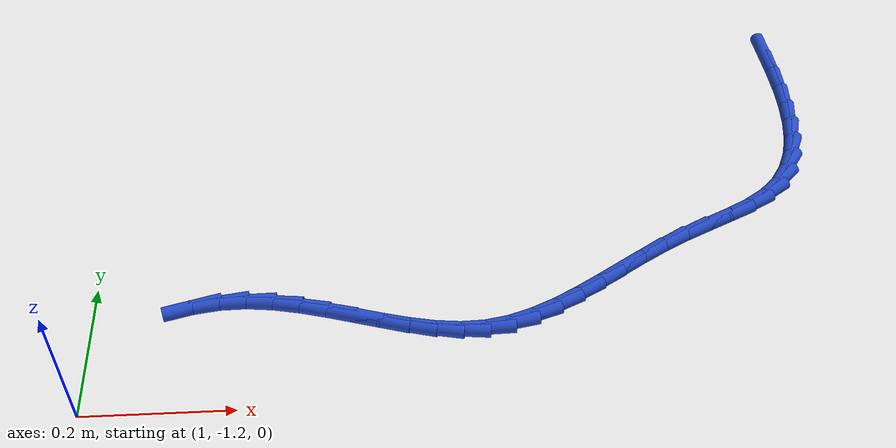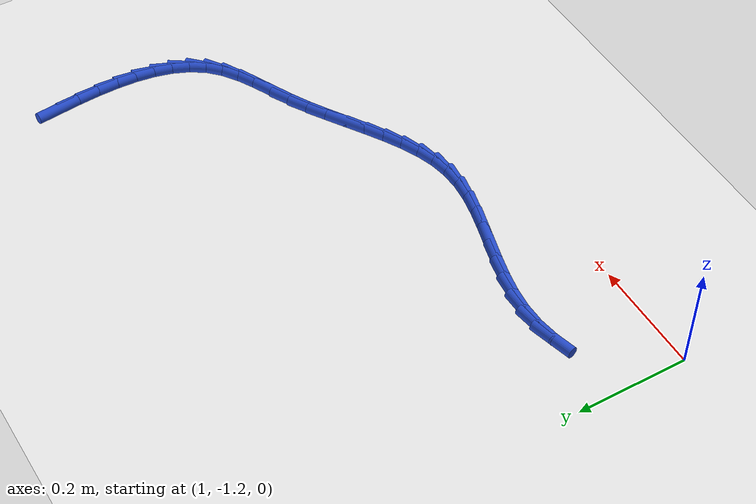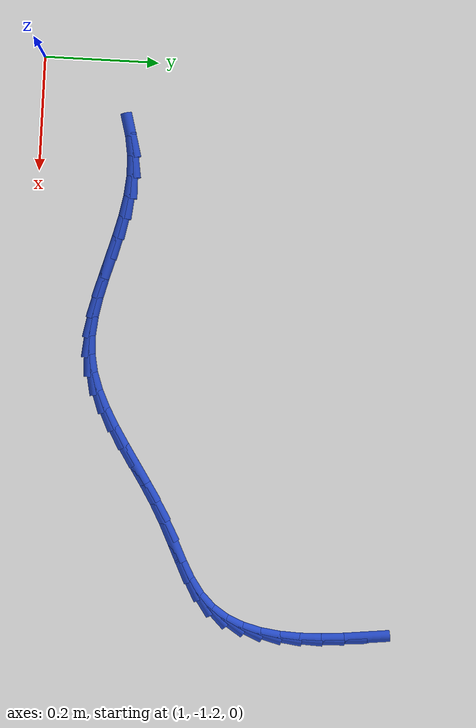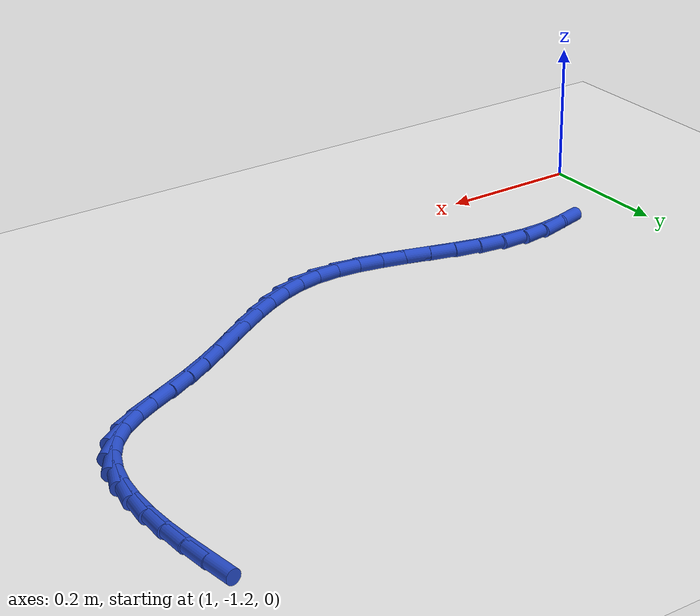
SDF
<sdf version="1.6">
 <world name="default">
  <model name="ground_plane">
   <static>1</static>
   <link name="link">
    <collision name="collision">
     <geometry><plane><normal>0 0 1</normal><size>100 100</size></plane></geometry>
     <surface><friction><ode><mu>100</mu><mu2>50</mu2></ode></friction></surface>
    </collision>
    <visual name="visual">
     <cast_shadows>0</cast_shadows>
     <geometry><plane><normal>0 0 1</normal><size>100 100</size></plane></geometry>
     <material>
      <script><uri>file://media/materials/scripts/gazebo.material</uri><name>Gazebo/WhiteGlow</name></script>
     </material>
    </visual>
   </link>
  </model>
  <model name="line">
   <link name="link_116">
    <pose>1.9872264827737676 -0.5815031991100881 0.01 0 1.57 -1.4576846992929102</pose>
    <collision name="collision">
     <geometry><cylinder><radius>0.01</radius><length>0.08</length></cylinder></geometry>
    </collision>
    <visual name="visual">
     <material>
      <script><name>Gazebo/Blue</name><uri>file://media/materials/scripts/gazebo.material</uri></script>
     </material>
     <geometry><cylinder><radius>0.01</radius><length>0.08</length></cylinder></geometry>
    </visual>
   </link>
   <link name="link_117">
    <pose>1.9917659618540535 -0.6214646329467459 0.01 0 1.57 -1.4933557357807985</pose>
    <collision name="collision">
     <geometry><cylinder><radius>0.01</radius><length>0.08</length></cylinder></geometry>
    </collision>
    <visual name="visual">
     <material>
      <script><name>Gazebo/Blue</name><uri>file://media/materials/scripts/gazebo.material</uri></script>
     </material>
     <geometry><cylinder><radius>0.01</radius><length>0.08</length></cylinder></geometry>
    </visual>
   </link>
   <link name="link_118">
    <pose>1.9948069110935562 -0.6606542603078669 0.01 0 1.57 -1.544249902977541</pose>
    <collision name="collision">
     <geometry><cylinder><radius>0.01</radius><length>0.08</length></cylinder></geometry>
    </collision>
    <visual name="visual">
     <material>
      <script><name>Gazebo/Blue</name><uri>file://media/materials/scripts/gazebo.material</uri></script>
     </material>
     <geometry><cylinder><radius>0.01</radius><length>0.08</length></cylinder></geometry>
    </visual>
   </link>
   <link name="link_119">
    <pose>1.995816124653071 -0.6986622604365692 0.01 0 1.57 1.528101934071037</pose>
    <collision name="collision">
     <geometry><cylinder><radius>0.01</radius><length>0.08</length></cylinder></geometry>
    </collision>
    <visual name="visual">
     <material>
      <script><name>Gazebo/Blue</name><uri>file://media/materials/scripts/gazebo.material</uri></script>
     </material>
     <geometry><cylinder><radius>0.01</radius><length>0.08</length></cylinder></geometry>
    </visual>
   </link>
   <link name="link_120">
    <pose>1.9942603966933923 -0.7350788125759706 0.01 0 1.57 1.4363846745554085</pose>
    <collision name="collision">
     <geometry><cylinder><radius>0.01</radius><length>0.08</length></cylinder></geometry>
    </collision>
    <visual name="visual">
     <material>
      <script><name>Gazebo/Blue</name><uri>file://media/materials/scripts/gazebo.material</uri></script>
     </material>
     <geometry><cylinder><radius>0.01</radius><length>0.08</length></cylinder></geometry>
    </visual>
   </link>
   <link name="link_121">
    <pose>1.9896065213753156 -0.7694940959691898 0.01 0 1.57 1.3174781397698048</pose>
    <collision name="collision">
     <geometry><cylinder><radius>0.01</radius><length>0.08</length></cylinder></geometry>
    </collision>
    <visual name="visual">
     <material>
      <script><name>Gazebo/Blue</name><uri>file://media/materials/scripts/gazebo.material</uri></script>
     </material>
     <geometry><cylinder><radius>0.01</radius><length>0.08</length></cylinder></geometry>
    </visual>
   </link>
   <link name="link_122">
    <pose>1.9813212928596349 -0.8014982898593442 0.01 0 1.57 1.1675654839113954</pose>
    <collision name="collision">
     <geometry><cylinder><radius>0.01</radius><length>0.08</length></cylinder></geometry>
    </collision>
    <visual name="visual">
     <material>
      <script><name>Gazebo/Blue</name><uri>file://media/materials/scripts/gazebo.material</uri></script>
     </material>
     <geometry><cylinder><radius>0.01</radius><length>0.08</length></cylinder></geometry>
    </visual>
   </link>
   <link name="link_123">
    <pose>1.968871505307145 -0.8306815734895523 0.01 0 1.57 0.986917075265329</pose>
    <collision name="collision">
     <geometry><cylinder><radius>0.01</radius><length>0.08</length></cylinder></geometry>
    </collision>
    <visual name="visual">
     <material>
      <script><name>Gazebo/Blue</name><uri>file://media/materials/scripts/gazebo.material</uri></script>
     </material>
     <geometry><cylinder><radius>0.01</radius><length>0.08</length></cylinder></geometry>
    </visual>
   </link>
   <link name="link_124">
    <pose>1.9517239528786408 -0.8566341261029318 0.01 0 1.57 0.7843195128619176</pose>
    <collision name="collision">
     <geometry><cylinder><radius>0.01</radius><length>0.08</length></cylinder></geometry>
    </collision>
    <visual name="visual">
     <material>
      <script><name>Gazebo/Blue</name><uri>file://media/materials/scripts/gazebo.material</uri></script>
     </material>
     <geometry><cylinder><radius>0.01</radius><length>0.08</length></cylinder></geometry>
    </visual>
   </link>
   <link name="link_125">
    <pose>1.9293551950529026 -0.8789546797602112 0.01 0 1.57 0.6038750743746063</pose>
    <collision name="collision">
     <geometry><cylinder><radius>0.01</radius><length>0.08</length></cylinder></geometry>
    </collision>
    <visual name="visual">
     <material>
      <script><name>Gazebo/Blue</name><uri>file://media/materials/scripts/gazebo.material</uri></script>
     </material>
     <geometry><cylinder><radius>0.01</radius><length>0.08</length></cylinder></geometry>
    </visual>
   </link>
   <link name="link_126">
    <pose>1.9019485044334483 -0.8978609313594734 0.01 0 1.57 0.4938047646412717</pose>
    <collision name="collision">
     <geometry><cylinder><radius>0.01</radius><length>0.08</length></cylinder></geometry>
    </collision>
    <visual name="visual">
     <material>
      <script><name>Gazebo/Blue</name><uri>file://media/materials/scripts/gazebo.material</uri></script>
     </material>
     <geometry><cylinder><radius>0.01</radius><length>0.08</length></cylinder></geometry>
    </visual>
   </link>
   <link name="link_127">
    <pose>1.870858315980791 -0.9145963240209097 0.01 0 1.57 0.4454703849372298</pose>
    <collision name="collision">
     <geometry><cylinder><radius>0.01</radius><length>0.08</length></cylinder></geometry>
    </collision>
    <visual name="visual">
     <material>
      <script><name>Gazebo/Blue</name><uri>file://media/materials/scripts/gazebo.material</uri></script>
     </material>
     <geometry><cylinder><radius>0.01</radius><length>0.08</length></cylinder></geometry>
    </visual>
   </link>
   <link name="link_128">
    <pose>1.8375492157436122 -0.9305007751595642 0.01 0 1.57 0.44902163722185184</pose>
    <collision name="collision">
     <geometry><cylinder><radius>0.01</radius><length>0.08</length></cylinder></geometry>
    </collision>
    <visual name="visual">
     <material>
      <script><name>Gazebo/Blue</name><uri>file://media/materials/scripts/gazebo.material</uri></script>
     </material>
     <geometry><cylinder><radius>0.01</radius><length>0.08</length></cylinder></geometry>
    </visual>
   </link>
   <link name="link_129">
    <pose>1.8034857897705923 -0.9469142021904796 0.01 0 1.57 0.4965349517449008</pose>
    <collision name="collision">
     <geometry><cylinder><radius>0.01</radius><length>0.08</length></cylinder></geometry>
    </collision>
    <visual name="visual">
     <material>
      <script><name>Gazebo/Blue</name><uri>file://media/materials/scripts/gazebo.material</uri></script>
     </material>
     <geometry><cylinder><radius>0.01</radius><length>0.08</length></cylinder></geometry>
    </visual>
   </link>
   <link name="link_130">
    <pose>1.7700293961150806 -0.9650412708286974 0.01 0 1.57 0.545349699010382</pose>
    <collision name="collision">
     <geometry><cylinder><radius>0.01</radius><length>0.08</length></cylinder></geometry>
    </collision>
    <visual name="visual">
     <material>
      <script><name>Gazebo/Blue</name><uri>file://media/materials/scripts/gazebo.material</uri></script>
     </material>
     <geometry><cylinder><radius>0.01</radius><length>0.08</length></cylinder></geometry>
    </visual>
   </link>
   <link name="link_131">
    <pose>1.7375289415196589 -0.9847601097339607 0.01 0 1.57 0.5716383829701792</pose>
    <collision name="collision">
     <geometry><cylinder><radius>0.01</radius><length>0.08</length></cylinder></geometry>
    </collision>
    <visual name="visual">
     <material>
      <script><name>Gazebo/Blue</name><uri>file://media/materials/scripts/gazebo.material</uri></script>
     </material>
     <geometry><cylinder><radius>0.01</radius><length>0.08</length></cylinder></geometry>
    </visual>
   </link>
   <link name="link_132">
    <pose>1.7057594161527967 -1.0051968888356377 0.01 0 1.57 0.5751757112579161</pose>
    <collision name="collision">
     <geometry><cylinder><radius>0.01</radius><length>0.08</length></cylinder></geometry>
    </collision>
    <visual name="visual">
     <material>
      <script><name>Gazebo/Blue</name><uri>file://media/materials/scripts/gazebo.material</uri></script>
     </material>
     <geometry><cylinder><radius>0.01</radius><length>0.08</length></cylinder></geometry>
    </visual>
   </link>
   <link name="link_133">
    <pose>1.6744892496272463 -1.025469182271706 0.01 0 1.57 0.5550867644209161</pose>
    <collision name="collision">
     <geometry><cylinder><radius>0.01</radius><length>0.08</length></cylinder></geometry>
    </collision>
    <visual name="visual">
     <material>
      <script><name>Gazebo/Blue</name><uri>file://media/materials/scripts/gazebo.material</uri></script>
     </material>
     <geometry><cylinder><radius>0.01</radius><length>0.08</length></cylinder></geometry>
    </visual>
   </link>
   <link name="link_134">
    <pose>1.6434868715557605 -1.0446945641801417 0.01 0 1.57 0.5093812392047438</pose>
    <collision name="collision">
     <geometry><cylinder><radius>0.01</radius><length>0.08</length></cylinder></geometry>
    </collision>
    <visual name="visual">
     <material>
      <script><name>Gazebo/Blue</name><uri>file://media/materials/scripts/gazebo.material</uri></script>
     </material>
     <geometry><cylinder><radius>0.01</radius><length>0.08</length></cylinder></geometry>
    </visual>
   </link>
   <link name="link_135">
    <pose>1.6125207115510904 -1.0619906086989221 0.01 0 1.57 0.43510404566772826</pose>
    <collision name="collision">
     <geometry><cylinder><radius>0.01</radius><length>0.08</length></cylinder></geometry>
    </collision>
    <visual name="visual">
     <material>
      <script><name>Gazebo/Blue</name><uri>file://media/materials/scripts/gazebo.material</uri></script>
     </material>
     <geometry><cylinder><radius>0.01</radius><length>0.08</length></cylinder></geometry>
    </visual>
   </link>
   <link name="link_136">
    <pose>1.581359199225989 -1.0764748899660233 0.01 0 1.57 0.32915734884097275</pose>
    <collision name="collision">
     <geometry><cylinder><radius>0.01</radius><length>0.08</length></cylinder></geometry>
    </collision>
    <visual name="visual">
     <material>
      <script><name>Gazebo/Blue</name><uri>file://media/materials/scripts/gazebo.material</uri></script>
     </material>
     <geometry><cylinder><radius>0.01</radius><length>0.08</length></cylinder></geometry>
    </visual>
   </link>
   <link name="link_137">
    <pose>1.5497707641932086 -1.0872649821194222 0.01 0 1.57 0.19035145123141214</pose>
    <collision name="collision">
     <geometry><cylinder><radius>0.01</radius><length>0.08</length></cylinder></geometry>
    </collision>
    <visual name="visual">
     <material>
      <script><name>Gazebo/Blue</name><uri>file://media/materials/scripts/gazebo.material</uri></script>
     </material>
     <geometry><cylinder><radius>0.01</radius><length>0.08</length></cylinder></geometry>
    </visual>
   </link>
   <link name="link_138">
    <pose>1.5175238360655017 -1.0934784592970959 0.01 0 1.57 0.03172909073590086</pose>
    <collision name="collision">
     <geometry><cylinder><radius>0.01</radius><length>0.08</length></cylinder></geometry>
    </collision>
    <visual name="visual">
     <material>
      <script><name>Gazebo/Blue</name><uri>file://media/materials/scripts/gazebo.material</uri></script>
     </material>
     <geometry><cylinder><radius>0.01</radius><length>0.08</length></cylinder></geometry>
    </visual>
   </link>
   <link name="link_139">
    <pose>1.4844398373765666 -1.0945285369004178 0.01 0 1.57 -0.09953374399048052</pose>
    <collision name="collision">
     <geometry><cylinder><radius>0.01</radius><length>0.08</length></cylinder></geometry>
    </collision>
    <visual name="visual">
     <material>
      <script><name>Gazebo/Blue</name><uri>file://media/materials/scripts/gazebo.material</uri></script>
     </material>
     <geometry><cylinder><radius>0.01</radius><length>0.08</length></cylinder></geometry>
    </visual>
   </link>
   <link name="link_140">
    <pose>1.4505765082015303 -1.0911468180561712 0.01 0 1.57 -0.19211798585813258</pose>
    <collision name="collision">
     <geometry><cylinder><radius>0.01</radius><length>0.08</length></cylinder></geometry>
    </collision>
    <visual name="visual">
     <material>
      <script><name>Gazebo/Blue</name><uri>file://media/materials/scripts/gazebo.material</uri></script>
     </material>
     <geometry><cylinder><radius>0.01</radius><length>0.08</length></cylinder></geometry>
    </visual>
   </link>
   <link name="link_141">
    <pose>1.4160574376610355 -1.0844322699590554 0.01 0 1.57 -0.2499557699756878</pose>
    <collision name="collision">
     <geometry><cylinder><radius>0.01</radius><length>0.08</length></cylinder></geometry>
    </collision>
    <visual name="visual">
     <material>
      <script><name>Gazebo/Blue</name><uri>file://media/materials/scripts/gazebo.material</uri></script>
     </material>
     <geometry><cylinder><radius>0.01</radius><length>0.08</length></cylinder></geometry>
    </visual>
   </link>
   <link name="link_142">
    <pose>1.3810062176869429 -1.0754838754872351 0.01 0 1.57 -0.2770449351986896</pose>
    <collision name="collision">
     <geometry><cylinder><radius>0.01</radius><length>0.08</length></cylinder></geometry>
    </collision>
    <visual name="visual">
     <material>
      <script><name>Gazebo/Blue</name><uri>file://media/materials/scripts/gazebo.material</uri></script>
     </material>
     <geometry><cylinder><radius>0.01</radius><length>0.08</length></cylinder></geometry>
    </visual>
   </link>
   <link name="link_143">
    <pose>1.3455464402111155 -1.0654006175188762 0.01 0 1.57 -0.27587587968516736</pose>
    <collision name="collision">
     <geometry><cylinder><radius>0.01</radius><length>0.08</length></cylinder></geometry>
    </collision>
    <visual name="visual">
     <material>
      <script><name>Gazebo/Blue</name><uri>file://media/materials/scripts/gazebo.material</uri></script>
     </material>
     <geometry><cylinder><radius>0.01</radius><length>0.08</length></cylinder></geometry>
    </visual>
   </link>
   <link name="link_144">
    <pose>1.3098016971654154 -1.055281478932144 0.01 0 1.57 -0.24706162825812336</pose>
    <collision name="collision">
     <geometry><cylinder><radius>0.01</radius><length>0.08</length></cylinder></geometry>
    </collision>
    <visual name="visual">
     <material>
      <script><name>Gazebo/Blue</name><uri>file://media/materials/scripts/gazebo.material</uri></script>
     </material>
     <geometry><cylinder><radius>0.01</radius><length>0.08</length></cylinder></geometry>
    </visual>
   </link>
   <link name="link_145">
    <pose>1.2738955804817051 -1.0462254426052042 0.01 0 1.57 -0.18949628014877612</pose>
    <collision name="collision">
     <geometry><cylinder><radius>0.01</radius><length>0.08</length></cylinder></geometry>
    </collision>
    <visual name="visual">
     <material>
      <script><name>Gazebo/Blue</name><uri>file://media/materials/scripts/gazebo.material</uri></script>
     </material>
     <geometry><cylinder><radius>0.01</radius><length>0.08</length></cylinder></geometry>
    </visual>
   </link>
   <link name="link_146">
    <pose>1.2379516820918472 -1.0393314914162222 0.01 0 1.57 -0.10096828090162599</pose>
    <collision name="collision">
     <geometry><cylinder><radius>0.01</radius><length>0.08</length></cylinder></geometry>
    </collision>
    <visual name="visual">
     <material>
      <script><name>Gazebo/Blue</name><uri>file://media/materials/scripts/gazebo.material</uri></script>
     </material>
     <geometry><cylinder><radius>0.01</radius><length>0.08</length></cylinder></geometry>
    </visual>
   </link>
   <link name="link_147">
    <pose>1.2020935939277035 -1.035698608243363 0.01 0 1.57 0.020246822021215114</pose>
    <collision name="collision">
     <geometry><cylinder><radius>0.01</radius><length>0.08</length></cylinder></geometry>
    </collision>
    <visual name="visual">
     <material>
      <script><name>Gazebo/Blue</name><uri>file://media/materials/scripts/gazebo.material</uri></script>
     </material>
     <geometry><cylinder><radius>0.01</radius><length>0.08</length></cylinder></geometry>
    </visual>
   </link>
   <link name="link_148">
    <pose>1.1664445503201664 -1.0364204867280045 0.01 0 1.57 0.15466045736286788</pose>
    <collision name="collision">
     <geometry><cylinder><radius>0.01</radius><length>0.08</length></cylinder></geometry>
    </collision>
    <visual name="visual">
     <material>
      <script><name>Gazebo/Blue</name><uri>file://media/materials/scripts/gazebo.material</uri></script>
     </material>
     <geometry><cylinder><radius>0.01</radius><length>0.08</length></cylinder></geometry>
    </visual>
   </link>
   <link name="link_149">
    <pose>1.1310833442969026 -1.0419334940630256 0.01 0 1.57 0.2632451827758721</pose>
    <collision name="collision">
     <geometry><cylinder><radius>0.01</radius><length>0.08</length></cylinder></geometry>
    </collision>
    <visual name="visual">
     <material>
      <script><name>Gazebo/Blue</name><uri>file://media/materials/scripts/gazebo.material</uri></script>
     </material>
     <geometry><cylinder><radius>0.01</radius><length>0.08</length></cylinder></geometry>
    </visual>
   </link>
  </model>
 </world>
</sdf>
